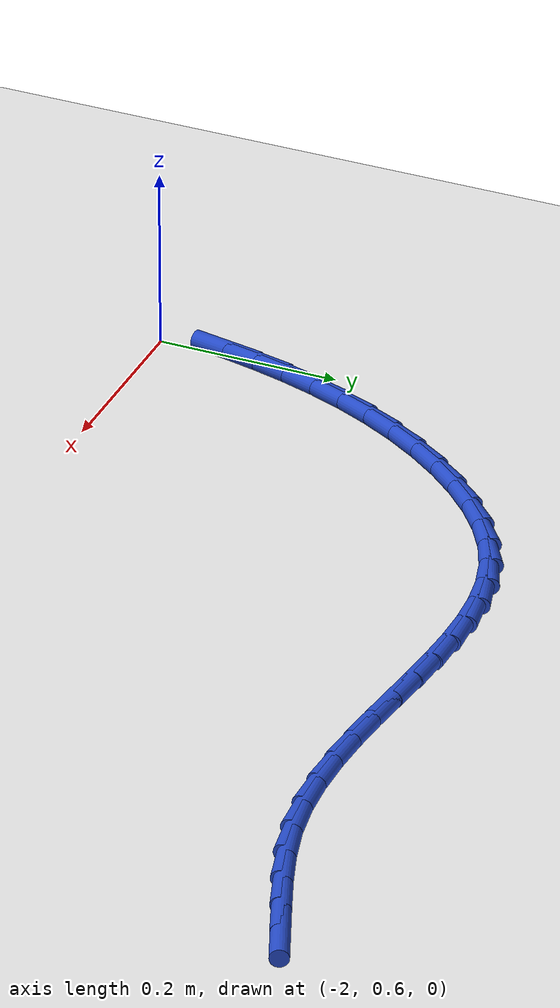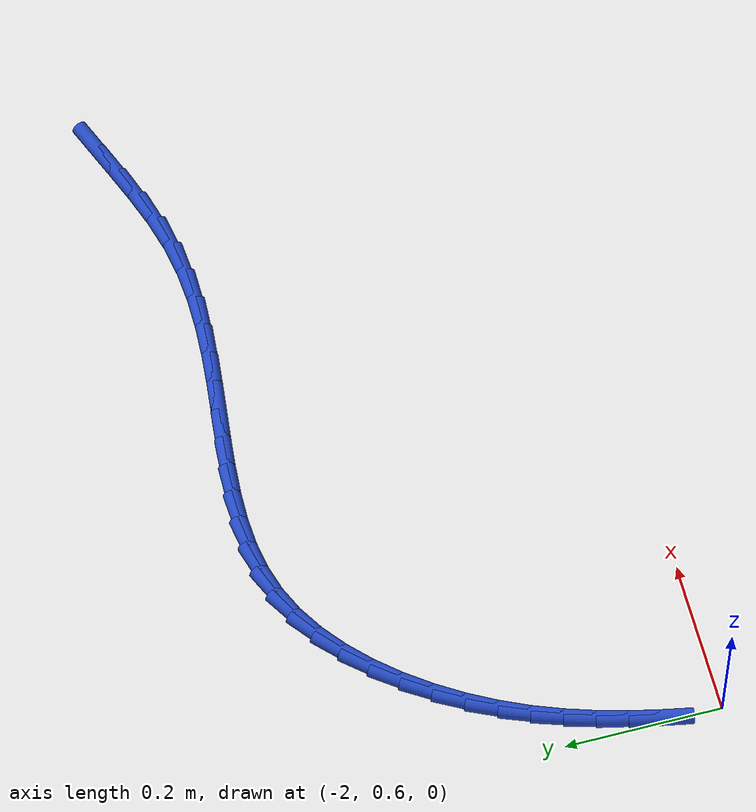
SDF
<sdf version="1.6">
 <world name="default">
  <model name="ground_plane">
   <static>1</static>
   <link name="link">
    <collision name="collision">
     <geometry><plane><normal>0 0 1</normal><size>100 100</size></plane></geometry>
     <surface><friction><ode><mu>100</mu><mu2>50</mu2></ode></friction></surface>
    </collision>
    <visual name="visual">
     <cast_shadows>0</cast_shadows>
     <geometry><plane><normal>0 0 1</normal><size>100 100</size></plane></geometry>
     <material>
      <script><uri>file://media/materials/scripts/gazebo.material</uri><name>Gazebo/WhiteGlow</name></script>
     </material>
    </visual>
   </link>
  </model>
  <model name="line">
   <link name="link_44">
    <pose>-1.032672508056846 1.1552155769514159 0.01 0 1.57 0.3837335945520792</pose>
    <collision name="collision">
     <geometry><cylinder><radius>0.01</radius><length>0.08</length></cylinder></geometry>
    </collision>
    <visual name="visual">
     <material>
      <script><name>Gazebo/Blue</name><uri>file://media/materials/scripts/gazebo.material</uri></script>
     </material>
     <geometry><cylinder><radius>0.01</radius><length>0.08</length></cylinder></geometry>
    </visual>
   </link>
   <link name="link_45">
    <pose>-1.0730172449563455 1.1389264530101346 0.01 0 1.57 0.37373212466682687</pose>
    <collision name="collision">
     <geometry><cylinder><radius>0.01</radius><length>0.08</length></cylinder></geometry>
    </collision>
    <visual name="visual">
     <material>
      <script><name>Gazebo/Blue</name><uri>file://media/materials/scripts/gazebo.material</uri></script>
     </material>
     <geometry><cylinder><radius>0.01</radius><length>0.08</length></cylinder></geometry>
    </visual>
   </link>
   <link name="link_46">
    <pose>-1.1142196276701002 1.1227684036879675 0.01 0 1.57 0.33471175437687406</pose>
    <collision name="collision">
     <geometry><cylinder><radius>0.01</radius><length>0.08</length></cylinder></geometry>
    </collision>
    <visual name="visual">
     <material>
      <script><name>Gazebo/Blue</name><uri>file://media/materials/scripts/gazebo.material</uri></script>
     </material>
     <geometry><cylinder><radius>0.01</radius><length>0.08</length></cylinder></geometry>
    </visual>
   </link>
   <link name="link_47">
    <pose>-1.1559971425078657 1.108238268850249 0.01 0 1.57 0.264741006083092</pose>
    <collision name="collision">
     <geometry><cylinder><radius>0.01</radius><length>0.08</length></cylinder></geometry>
    </collision>
    <visual name="visual">
     <material>
      <script><name>Gazebo/Blue</name><uri>file://media/materials/scripts/gazebo.material</uri></script>
     </material>
     <geometry><cylinder><radius>0.01</radius><length>0.08</length></cylinder></geometry>
    </visual>
   </link>
   <link name="link_48">
    <pose>-1.1980672776987353 1.0968328656514157 0.01 0 1.57 0.16935201622822105</pose>
    <collision name="collision">
     <geometry><cylinder><radius>0.01</radius><length>0.08</length></cylinder></geometry>
    </collision>
    <visual name="visual">
     <material>
      <script><name>Gazebo/Blue</name><uri>file://media/materials/scripts/gazebo.material</uri></script>
     </material>
     <geometry><cylinder><radius>0.01</radius><length>0.08</length></cylinder></geometry>
    </visual>
   </link>
   <link name="link_49">
    <pose>-1.2401828027273871 1.089631539651165 0.01 0 1.57 0.08074902936610112</pose>
    <collision name="collision">
     <geometry><cylinder><radius>0.01</radius><length>0.08</length></cylinder></geometry>
    </collision>
    <visual name="visual">
     <material>
      <script><name>Gazebo/Blue</name><uri>file://media/materials/scripts/gazebo.material</uri></script>
     </material>
     <geometry><cylinder><radius>0.01</radius><length>0.08</length></cylinder></geometry>
    </visual>
   </link>
   <link name="link_50">
    <pose>-1.2822219119328608 1.0862295249992515 0.01 0 1.57 0.008051624661811831</pose>
    <collision name="collision">
     <geometry><cylinder><radius>0.01</radius><length>0.08</length></cylinder></geometry>
    </collision>
    <visual name="visual">
     <material>
      <script><name>Gazebo/Blue</name><uri>file://media/materials/scripts/gazebo.material</uri></script>
     </material>
     <geometry><cylinder><radius>0.01</radius><length>0.08</length></cylinder></geometry>
    </visual>
   </link>
   <link name="link_51">
    <pose>-1.3240906589164114 1.0858924062784632 0.01 0 1.57 -0.047875627217613244</pose>
    <collision name="collision">
     <geometry><cylinder><radius>0.01</radius><length>0.08</length></cylinder></geometry>
    </collision>
    <visual name="visual">
     <material>
      <script><name>Gazebo/Blue</name><uri>file://media/materials/scripts/gazebo.material</uri></script>
     </material>
     <geometry><cylinder><radius>0.01</radius><length>0.08</length></cylinder></geometry>
    </visual>
   </link>
   <link name="link_52">
    <pose>-1.3656950972792952 1.0878857680715892 0.01 0 1.57 -0.08680576806463255</pose>
    <collision name="collision">
     <geometry><cylinder><radius>0.01</radius><length>0.08</length></cylinder></geometry>
    </collision>
    <visual name="visual">
     <material>
      <script><name>Gazebo/Blue</name><uri>file://media/materials/scripts/gazebo.material</uri></script>
     </material>
     <geometry><cylinder><radius>0.01</radius><length>0.08</length></cylinder></geometry>
    </visual>
   </link>
   <link name="link_53">
    <pose>-1.4069412806227661 1.0914751949614188 0.01 0 1.57 -0.10868117719124837</pose>
    <collision name="collision">
     <geometry><cylinder><radius>0.01</radius><length>0.08</length></cylinder></geometry>
    </collision>
    <visual name="visual">
     <material>
      <script><name>Gazebo/Blue</name><uri>file://media/materials/scripts/gazebo.material</uri></script>
     </material>
     <geometry><cylinder><radius>0.01</radius><length>0.08</length></cylinder></geometry>
    </visual>
   </link>
   <link name="link_54">
    <pose>-1.4477352625480802 1.0959262715307403 0.01 0 1.57 -0.11326610394453168</pose>
    <collision name="collision">
     <geometry><cylinder><radius>0.01</radius><length>0.08</length></cylinder></geometry>
    </collision>
    <visual name="visual">
     <material>
      <script><name>Gazebo/Blue</name><uri>file://media/materials/scripts/gazebo.material</uri></script>
     </material>
     <geometry><cylinder><radius>0.01</radius><length>0.08</length></cylinder></geometry>
    </visual>
   </link>
   <link name="link_55">
    <pose>-1.4879830966564933 1.1005045823623432 0.01 0 1.57 -0.09992751326492197</pose>
    <collision name="collision">
     <geometry><cylinder><radius>0.01</radius><length>0.08</length></cylinder></geometry>
    </collision>
    <visual name="visual">
     <material>
      <script><name>Gazebo/Blue</name><uri>file://media/materials/scripts/gazebo.material</uri></script>
     </material>
     <geometry><cylinder><radius>0.01</radius><length>0.08</length></cylinder></geometry>
    </visual>
   </link>
   <link name="link_56">
    <pose>-1.5275908365492599 1.1044757120390167 0.01 0 1.57 -0.06754010004169966</pose>
    <collision name="collision">
     <geometry><cylinder><radius>0.01</radius><length>0.08</length></cylinder></geometry>
    </collision>
    <visual name="visual">
     <material>
      <script><name>Gazebo/Blue</name><uri>file://media/materials/scripts/gazebo.material</uri></script>
     </material>
     <geometry><cylinder><radius>0.01</radius><length>0.08</length></cylinder></geometry>
    </visual>
   </link>
   <link name="link_57">
    <pose>-1.5664645358276357 1.1071052451435492 0.01 0 1.57 -0.014547817159745936</pose>
    <collision name="collision">
     <geometry><cylinder><radius>0.01</radius><length>0.08</length></cylinder></geometry>
    </collision>
    <visual name="visual">
     <material>
      <script><name>Gazebo/Blue</name><uri>file://media/materials/scripts/gazebo.material</uri></script>
     </material>
     <geometry><cylinder><radius>0.01</radius><length>0.08</length></cylinder></geometry>
    </visual>
   </link>
   <link name="link_58">
    <pose>-1.6045102480928757 1.1076587662587294 0.01 0 1.57 0.06071935727759957</pose>
    <collision name="collision">
     <geometry><cylinder><radius>0.01</radius><length>0.08</length></cylinder></geometry>
    </collision>
    <visual name="visual">
     <material>
      <script><name>Gazebo/Blue</name><uri>file://media/materials/scripts/gazebo.material</uri></script>
     </material>
     <geometry><cylinder><radius>0.01</radius><length>0.08</length></cylinder></geometry>
    </visual>
   </link>
   <link name="link_59">
    <pose>-1.6416340269462353 1.1054018599673467 0.01 0 1.57 0.15931637965256634</pose>
    <collision name="collision">
     <geometry><cylinder><radius>0.01</radius><length>0.08</length></cylinder></geometry>
    </collision>
    <visual name="visual">
     <material>
      <script><name>Gazebo/Blue</name><uri>file://media/materials/scripts/gazebo.material</uri></script>
     </material>
     <geometry><cylinder><radius>0.01</radius><length>0.08</length></cylinder></geometry>
    </visual>
   </link>
   <link name="link_60">
    <pose>-1.6777419259889705 1.0996001108521902 0.01 0 1.57 0.2804528105075971</pose>
    <collision name="collision">
     <geometry><cylinder><radius>0.01</radius><length>0.08</length></cylinder></geometry>
    </collision>
    <visual name="visual">
     <material>
      <script><name>Gazebo/Blue</name><uri>file://media/materials/scripts/gazebo.material</uri></script>
     </material>
     <geometry><cylinder><radius>0.01</radius><length>0.08</length></cylinder></geometry>
    </visual>
   </link>
   <link name="link_61">
    <pose>-1.712739998822336 1.0895191034960487 0.01 0 1.57 0.41875540404414924</pose>
    <collision name="collision">
     <geometry><cylinder><radius>0.01</radius><length>0.08</length></cylinder></geometry>
    </collision>
    <visual name="visual">
     <material>
      <script><name>Gazebo/Blue</name><uri>file://media/materials/scripts/gazebo.material</uri></script>
     </material>
     <geometry><cylinder><radius>0.01</radius><length>0.08</length></cylinder></geometry>
    </visual>
   </link>
   <link name="link_62">
    <pose>-1.746529670922118 1.0744799768860425 0.01 0 1.57 0.5511339803849232</pose>
    <collision name="collision">
     <geometry><cylinder><radius>0.01</radius><length>0.08</length></cylinder></geometry>
    </collision>
    <visual name="visual">
     <material>
      <script><name>Gazebo/Blue</name><uri>file://media/materials/scripts/gazebo.material</uri></script>
     </material>
     <geometry><cylinder><radius>0.01</radius><length>0.08</length></cylinder></geometry>
    </visual>
   </link>
   <link name="link_63">
    <pose>-1.7789500198035857 1.0545522731870298 0.01 0 1.57 0.6654593873830869</pose>
    <collision name="collision">
     <geometry><cylinder><radius>0.01</radius><length>0.08</length></cylinder></geometry>
    </collision>
    <visual name="visual">
     <material>
      <script><name>Gazebo/Blue</name><uri>file://media/materials/scripts/gazebo.material</uri></script>
     </material>
     <geometry><cylinder><radius>0.01</radius><length>0.08</length></cylinder></geometry>
    </visual>
   </link>
   <link name="link_64">
    <pose>-1.8097954295287273 1.0303420191927137 0.01 0 1.57 0.7645227738309321</pose>
    <collision name="collision">
     <geometry><cylinder><radius>0.01</radius><length>0.08</length></cylinder></geometry>
    </collision>
    <visual name="visual">
     <material>
      <script><name>Gazebo/Blue</name><uri>file://media/materials/scripts/gazebo.material</uri></script>
     </material>
     <geometry><cylinder><radius>0.01</radius><length>0.08</length></cylinder></geometry>
    </visual>
   </link>
   <link name="link_65">
    <pose>-1.8388593100612947 1.0024669344323895 0.01 0 1.57 0.8516213610013983</pose>
    <collision name="collision">
     <geometry><cylinder><radius>0.01</radius><length>0.08</length></cylinder></geometry>
    </collision>
    <visual name="visual">
     <material>
      <script><name>Gazebo/Blue</name><uri>file://media/materials/scripts/gazebo.material</uri></script>
     </material>
     <geometry><cylinder><radius>0.01</radius><length>0.08</length></cylinder></geometry>
    </visual>
   </link>
   <link name="link_66">
    <pose>-1.8659350713650393 0.9715447384353533 0.01 0 1.57 0.9298453504984128</pose>
    <collision name="collision">
     <geometry><cylinder><radius>0.01</radius><length>0.08</length></cylinder></geometry>
    </collision>
    <visual name="visual">
     <material>
      <script><name>Gazebo/Blue</name><uri>file://media/materials/scripts/gazebo.material</uri></script>
     </material>
     <geometry><cylinder><radius>0.01</radius><length>0.08</length></cylinder></geometry>
    </visual>
   </link>
   <link name="link_67">
    <pose>-1.8908161234037106 0.9381931507309005 0.01 0 1.57 1.0019822968421306</pose>
    <collision name="collision">
     <geometry><cylinder><radius>0.01</radius><length>0.08</length></cylinder></geometry>
    </collision>
    <visual name="visual">
     <material>
      <script><name>Gazebo/Blue</name><uri>file://media/materials/scripts/gazebo.material</uri></script>
     </material>
     <geometry><cylinder><radius>0.01</radius><length>0.08</length></cylinder></geometry>
    </visual>
   </link>
   <link name="link_68">
    <pose>-1.9132958761410612 0.9030298908483266 0.01 0 1.57 1.0705881719301298</pose>
    <collision name="collision">
     <geometry><cylinder><radius>0.01</radius><length>0.08</length></cylinder></geometry>
    </collision>
    <visual name="visual">
     <material>
      <script><name>Gazebo/Blue</name><uri>file://media/materials/scripts/gazebo.material</uri></script>
     </material>
     <geometry><cylinder><radius>0.01</radius><length>0.08</length></cylinder></geometry>
    </visual>
   </link>
   <link name="link_69">
    <pose>-1.933167739540842 0.8666726783169272 0.01 0 1.57 1.1374752683741867</pose>
    <collision name="collision">
     <geometry><cylinder><radius>0.01</radius><length>0.08</length></cylinder></geometry>
    </collision>
    <visual name="visual">
     <material>
      <script><name>Gazebo/Blue</name><uri>file://media/materials/scripts/gazebo.material</uri></script>
     </material>
     <geometry><cylinder><radius>0.01</radius><length>0.08</length></cylinder></geometry>
    </visual>
   </link>
   <link name="link_70">
    <pose>-1.950283446996872 0.8296774823380398 0.01 0 1.57 1.2000164831362308</pose>
    <collision name="collision">
     <geometry><cylinder><radius>0.01</radius><length>0.08</length></cylinder></geometry>
    </collision>
    <visual name="visual">
     <material>
      <script><name>Gazebo/Blue</name><uri>file://media/materials/scripts/gazebo.material</uri></script>
     </material>
     <geometry><cylinder><radius>0.01</radius><length>0.08</length></cylinder></geometry>
    </visual>
   </link>
   <link name="link_71">
    <pose>-1.9648395218536399 0.7922352234094928 0.01 0 1.57 1.2559958066403862</pose>
    <collision name="collision">
     <geometry><cylinder><radius>0.01</radius><length>0.08</length></cylinder></geometry>
    </collision>
    <visual name="visual">
     <material>
      <script><name>Gazebo/Blue</name><uri>file://media/materials/scripts/gazebo.material</uri></script>
     </material>
     <geometry><cylinder><radius>0.01</radius><length>0.08</length></cylinder></geometry>
    </visual>
   </link>
   <link name="link_72">
    <pose>-1.9771587308760386 0.7544031609497964 0.01 0 1.57 1.3046243806633468</pose>
    <collision name="collision">
     <geometry><cylinder><radius>0.01</radius><length>0.08</length></cylinder></geometry>
    </collision>
    <visual name="visual">
     <material>
      <script><name>Gazebo/Blue</name><uri>file://media/materials/scripts/gazebo.material</uri></script>
     </material>
     <geometry><cylinder><radius>0.01</radius><length>0.08</length></cylinder></geometry>
    </visual>
   </link>
   <link name="link_73">
    <pose>-1.9875640301846924 0.7162383538957917 0.01 0 1.57 1.3453943355236802</pose>
    <collision name="collision">
     <geometry><cylinder><radius>0.01</radius><length>0.08</length></cylinder></geometry>
    </collision>
    <visual name="visual">
     <material>
      <script><name>Gazebo/Blue</name><uri>file://media/materials/scripts/gazebo.material</uri></script>
     </material>
     <geometry><cylinder><radius>0.01</radius><length>0.08</length></cylinder></geometry>
    </visual>
   </link>
   <link name="link_74">
    <pose>-1.9963783759002258 0.6777978611843204 0.01 0 1.57 1.3780181869978718</pose>
    <collision name="collision">
     <geometry><cylinder><radius>0.01</radius><length>0.08</length></cylinder></geometry>
    </collision>
    <visual name="visual">
     <material>
      <script><name>Gazebo/Blue</name><uri>file://media/materials/scripts/gazebo.material</uri></script>
     </material>
     <geometry><cylinder><radius>0.01</radius><length>0.08</length></cylinder></geometry>
    </visual>
   </link>
  </model>
 </world>
</sdf>
